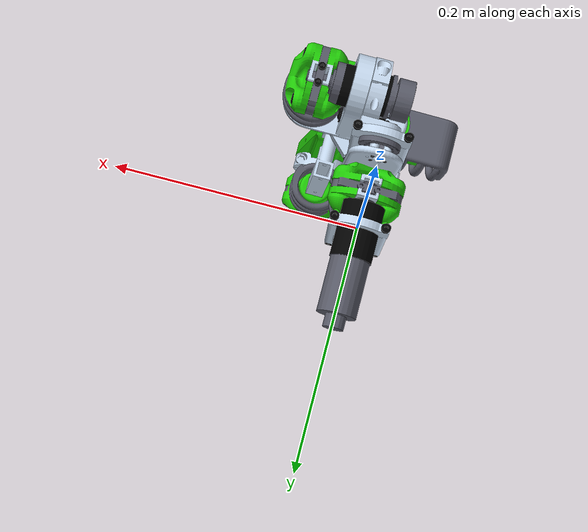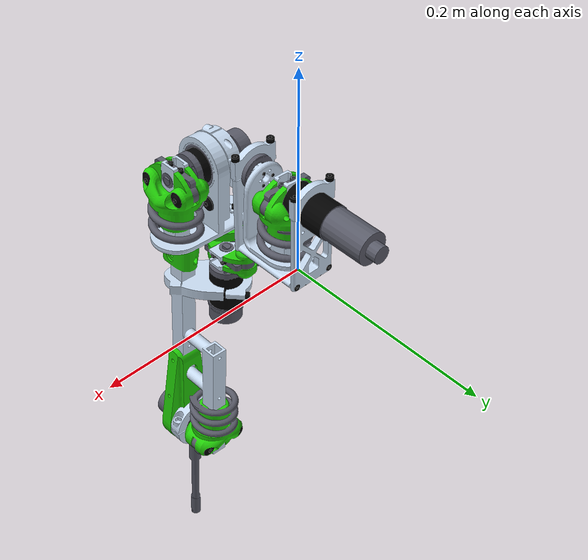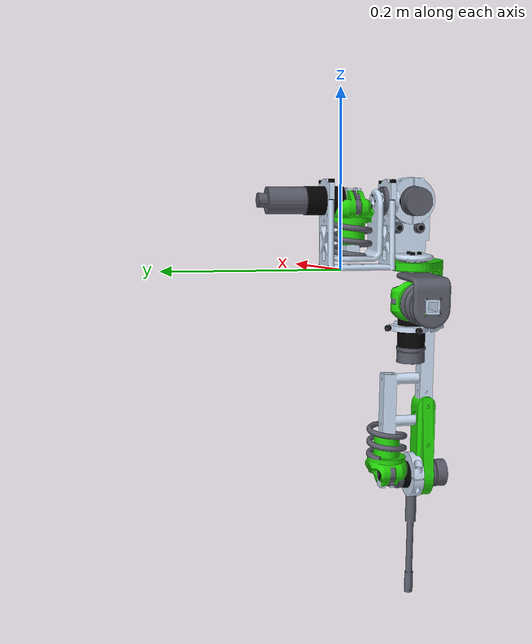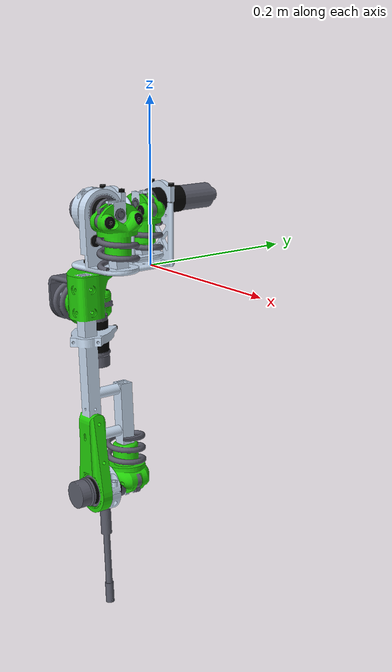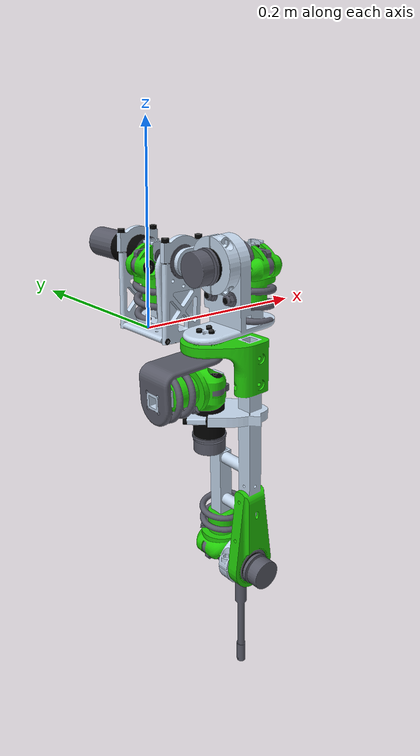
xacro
<?xml version="1.0"?>
<!-- Robot Reference Platform for Prototyping - Series Elastic Actuator Arm version 01 -->
<robot name="airp1_sea_arm_right" xmlns:xacro="http://www.ros.org/wiki/xacro">

  <!-- Constants -->
  <xacro:property name="damp" value="0.7" />    <!-- damping coefficient -->

  <!-- Default Inertial -->
  <xacro:macro name="default_inertial" params="z_value i_value mass">
    <inertial>
      <origin xyz="0 0 ${z_value}" rpy="0 0 0"/>
      <mass value="${mass}" />
      <inertia ixx="${i_value}" ixy="0.0" ixz="0.0"
               iyy="${i_value}" iyz="0.0"
               izz="${i_value}" />
    </inertial>
  </xacro:macro>

  <!-- Right Arm Link -->
  <link name="right_arm_link">
    <visual>
      <origin xyz="0 0 0" rpy="0 0 0"/>
      <geometry>
	    <mesh filename="package://airp1_sea_arm_description/meshes/visual/sea_arm_01_assem_01_arm_link_right.dae"/>
      </geometry>
    </visual>

    <collision>
      <origin xyz="0 0 0" rpy="0 0 0"/>
      <geometry>
	    <mesh filename="package://airp1_sea_arm_description/meshes/collision/sea_arm_01_assem_01_arm_link_right_collision.stl"/>
      </geometry>
    </collision>

    <inertial>
      <origin xyz="0 0 0" rpy="0 0 0"/>
      <mass value="1"/>
      <inertia
	  ixx="1.0" ixy="0.0" ixz="0.0"
	  iyy="1.0" iyz="0.0"
	  izz="1.0"/>
    </inertial>
  </link>

  <!-- Joint between Right Arm Link and Right Shoulder Pitch Link -->
  <joint name="right_arm_shoulder_pitch_joint" type="revolute">
    <parent link="right_arm_link"/>
    <child link="right_shoulder_pitch_link"/>
    <origin xyz="0 -0.0872 0.0762" rpy="0 -0.06 0"/>
    <axis xyz="0 1 0"/>
    <dynamics damping="${damp}"/>
    <limit effort="100.0" velocity="0.5" lower="-2.45" upper="0.5" />
  </joint>

  <!-- Right Shoulder Pitch Link -->
  <link name="right_shoulder_pitch_link">
    <visual>
      <origin xyz="0 0 0" rpy="0 0 0"/>
      <geometry>
	    <mesh filename="package://airp1_sea_arm_description/meshes/visual/sea_arm_01_assem_02_shoulder_pitch_link_right.dae"/>
      </geometry>
    </visual>

    <collision>
      <origin xyz="0 0 0" rpy="0 0 0"/>
      <geometry>
	    <mesh filename="package://airp1_sea_arm_description/meshes/collision/sea_arm_01_assem_02_shoulder_pitch_link_right_collision.stl"/>
      </geometry>
    </collision>

    <inertial>
      <origin xyz="0 0 0" rpy="0 0 0"/>
      <mass value="1"/>
      <inertia
	  ixx="1.0" ixy="0.0" ixz="0.0"
	  iyy="1.0" iyz="0.0"
	  izz="1.0"/>
    </inertial>
  </link>

  <!-- Joint between Right Shoulder Pitch Link and Right Shoulder Yaw Link -->
  <joint name="right_shoulder_pitch_shoulder_yaw_joint" type="revolute">
    <parent link="right_shoulder_pitch_link"/>
    <child link="right_shoulder_yaw_link"/>
    <origin xyz="0 0 0" rpy="0 0 0"/>
    <axis xyz="1 0 0"/>
    <dynamics damping="${damp}"/>
    <limit effort="100.0" velocity="0.5" lower="-3.14" upper="0" />
  </joint>

  <!-- Right Shoulder Yaw Link -->
  <link name="right_shoulder_yaw_link">
    <visual>
      <origin xyz="0 0 0" rpy="0 0 0"/>
      <geometry>
	    <mesh filename="package://airp1_sea_arm_description/meshes/visual/sea_arm_01_assem_03_shoulder_yaw_link.dae"/>
      </geometry>
    </visual>

    <collision>
      <origin xyz="0 0 0" rpy="0 0 0"/>
      <geometry>
	    <mesh filename="package://airp1_sea_arm_description/meshes/collision/sea_arm_01_assem_03_shoulder_yaw_link_collision.stl"/>
      </geometry>
    </collision>

    <inertial>
      <origin xyz="0 0 0" rpy="0 0 0"/>
      <mass value="1"/>
      <inertia
	  ixx="1.0" ixy="0.0" ixz="0.0"
	  iyy="1.0" iyz="0.0"
	  izz="1.0"/>
    </inertial>
  </link>

  <!-- Joint between Right Shoulder Yaw Link and Right Upper Arm Link -->
  <joint name="right_shoulder_yaw_upper_arm_joint" type="revolute">
    <parent link="right_shoulder_yaw_link"/>
    <child link="right_upper_arm_link"/>
    <origin xyz="0 0 0" rpy="0 0 0"/>
    <axis xyz="0 0 1"/>
    <dynamics damping="${damp}"/>
    <limit effort="100.0" velocity="0.5" lower="-0.9" upper="1.0" />
  </joint>

  <!-- Right Upper Arm Link -->
  <link name="right_upper_arm_link">
    <visual>
      <origin xyz="0 0 0" rpy="0 0 0"/>
      <geometry>
	    <mesh filename="package://airp1_sea_arm_description/meshes/visual/sea_arm_01_assem_04_upper_arm_link_right.dae"/>
      </geometry>
    </visual>

    <collision>
      <origin xyz="0 0 0" rpy="0 0 0"/>
      <geometry>
	    <mesh filename="package://airp1_sea_arm_description/meshes/collision/sea_arm_01_assem_04_upper_arm_link_right_collision.stl"/>
      </geometry>
    </collision>

    <inertial>
      <origin xyz="0 0 0" rpy="0 0 0"/>
      <mass value="1"/>
      <inertia
	  ixx="1.0" ixy="0.0" ixz="0.0"
	  iyy="1.0" iyz="0.0"
	  izz="1.0"/>
    </inertial>
  </link>

  <!-- Joint between Right Upper Arm Link and Right Elbow Link -->
  <joint name="right_upper_arm_elbow_joint" type="revolute">
    <parent link="right_upper_arm_link"/>
    <child link="right_elbow_link"/>
    <origin xyz="0.02687 -0.01587 -0.323" rpy="0 0 0"/>
    <axis xyz="0 1 0"/>
    <dynamics damping="${damp}"/>
    <limit effort="100.0" velocity="0.5" lower="-2.3" upper="0" />
  </joint>

  <!-- Right Elbow Link -->
  <link name="right_elbow_link">
    <visual>
      <origin xyz="0 0 0" rpy="0 0 0"/>
      <geometry>
	    <mesh filename="package://airp1_sea_arm_description/meshes/visual/sea_arm_01_assem_05_elbow_link_right.dae"/>
      </geometry>
    </visual>

    <collision>
      <origin xyz="0 0 0" rpy="0 0 0"/>
      <geometry>
	    <mesh filename="package://airp1_sea_arm_description/meshes/collision/sea_arm_01_assem_05_elbow_link_right_collision.stl"/>
      </geometry>
    </collision>

    <inertial>
      <origin xyz="0 0 0" rpy="0 0 0"/>
      <mass value="1"/>
      <inertia
	  ixx="1.0" ixy="0.0" ixz="0.0"
	  iyy="1.0" iyz="0.0"
	  izz="1.0"/>
    </inertial>
  </link>

</robot>
